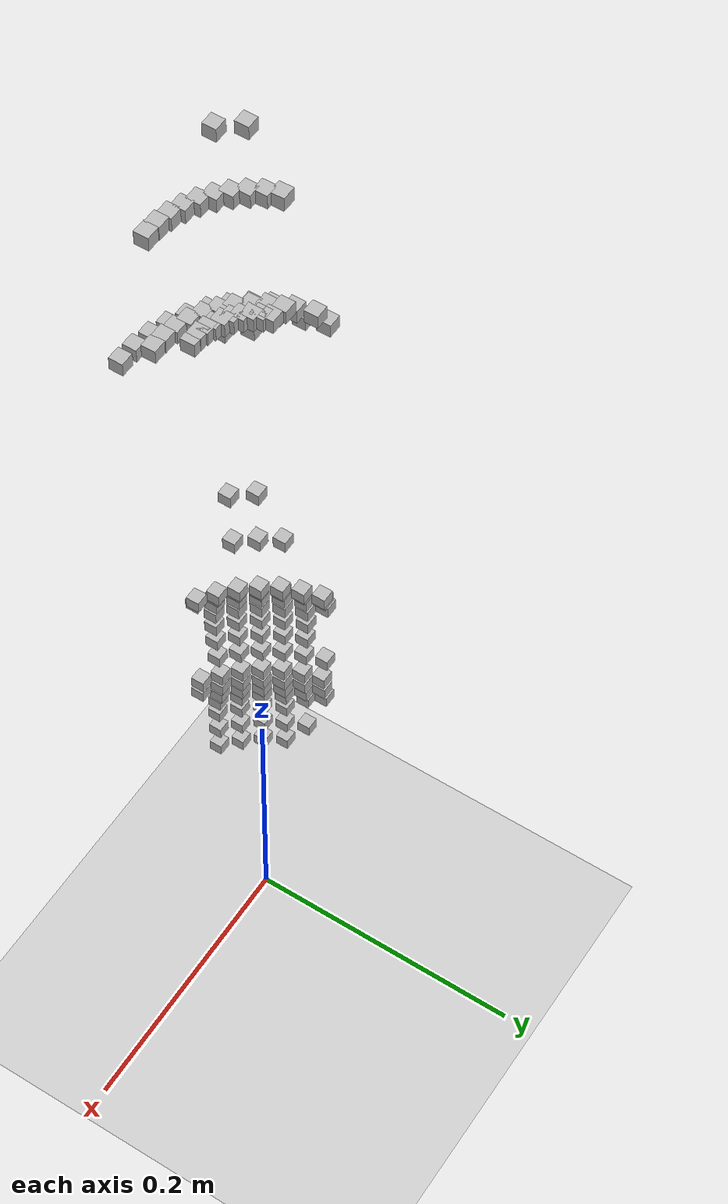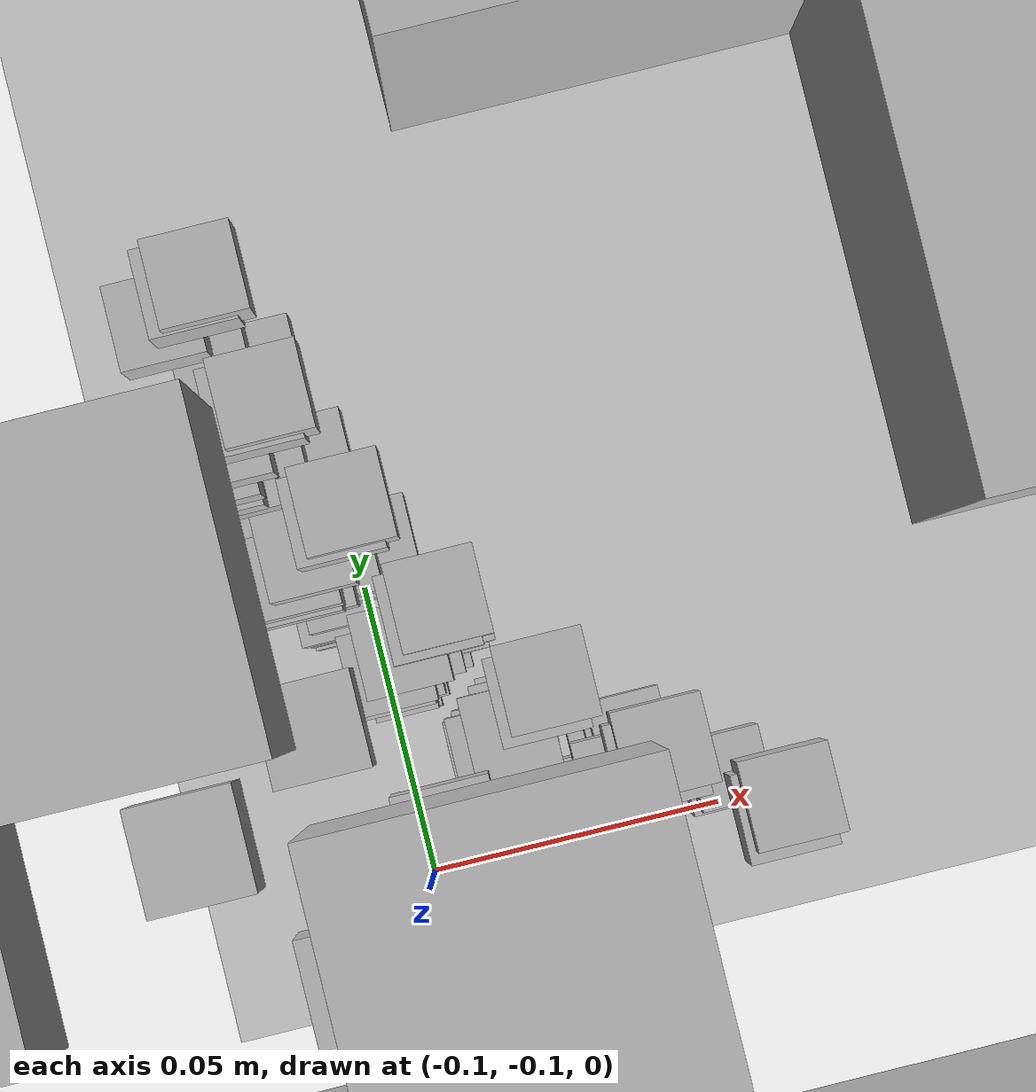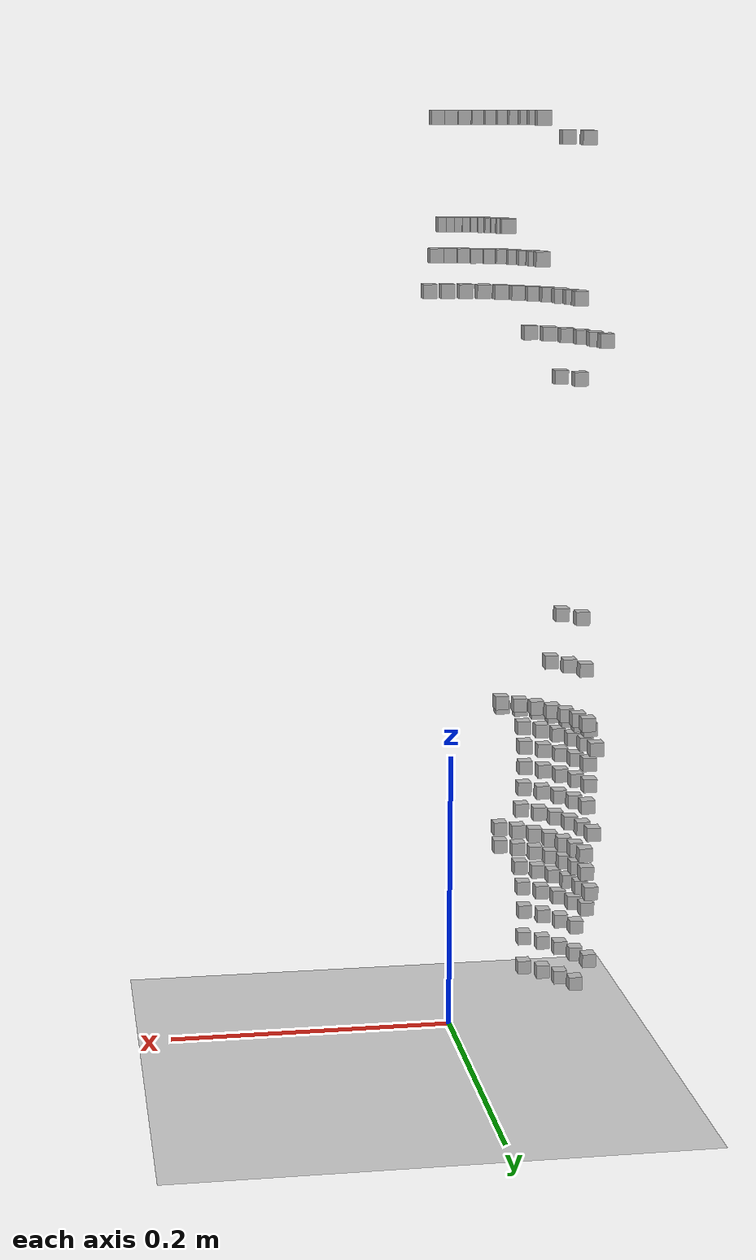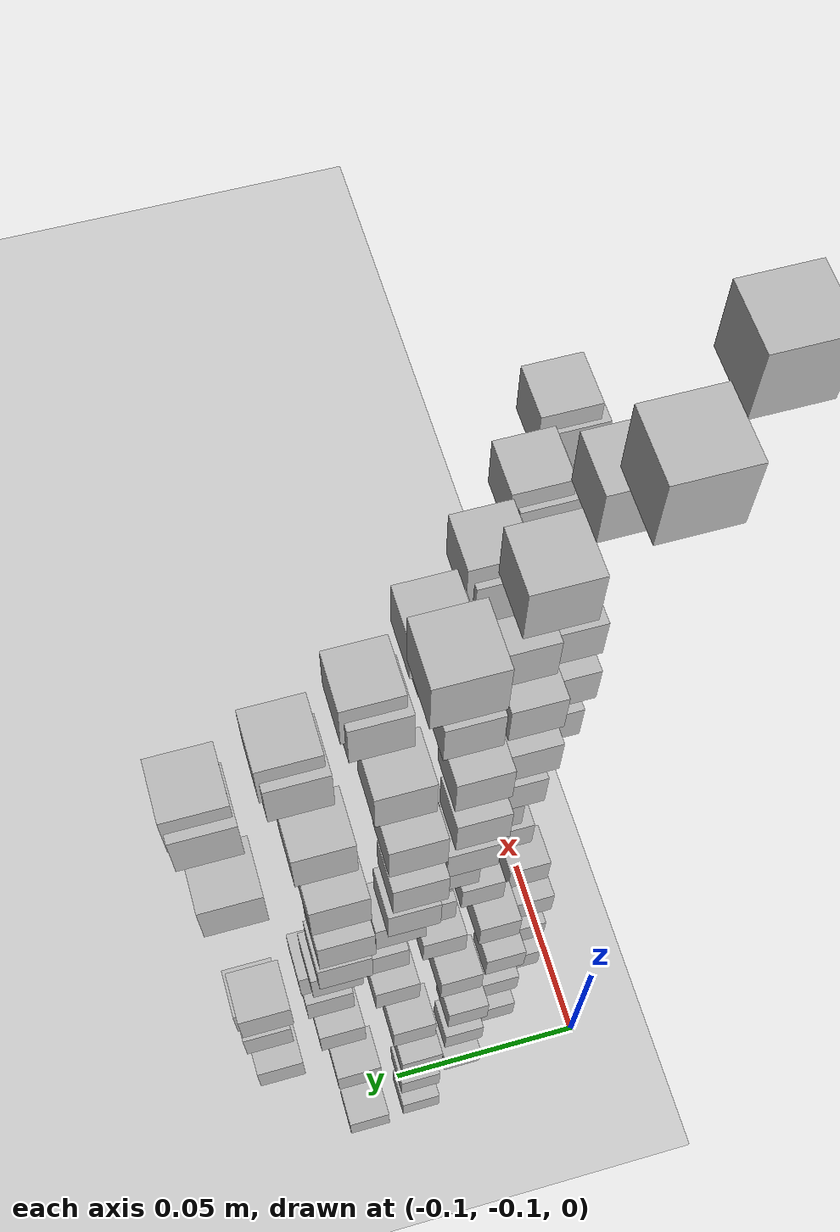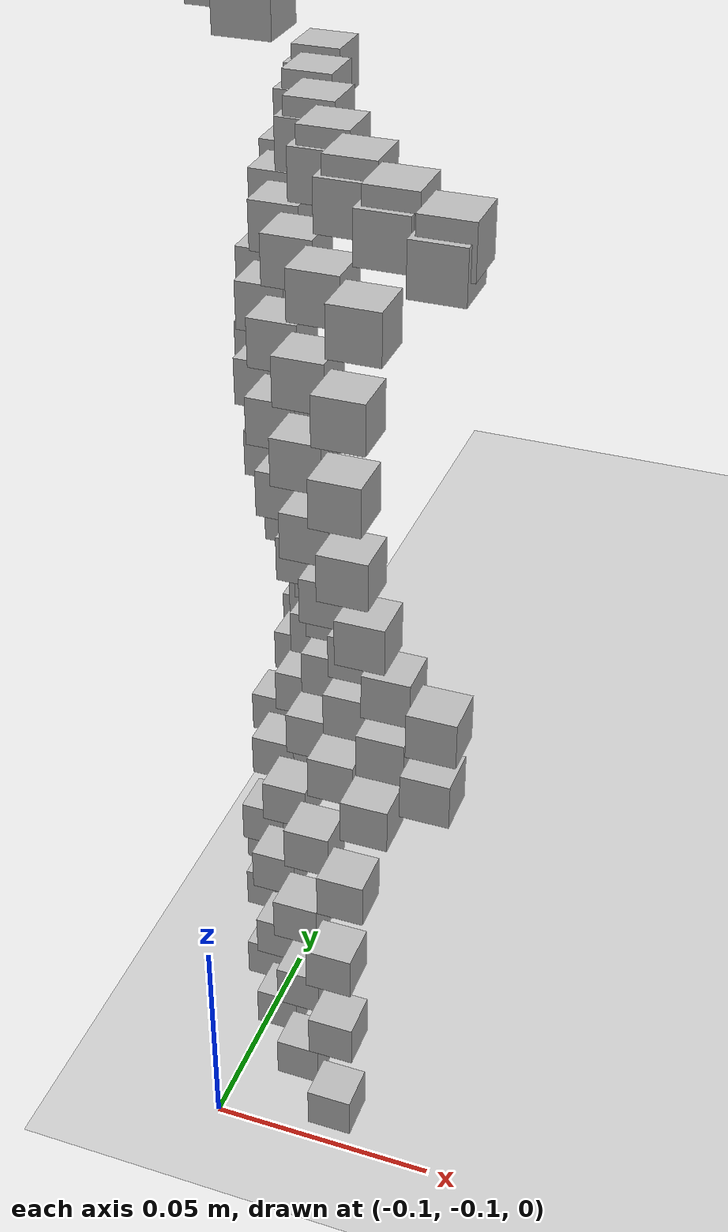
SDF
<sdf version="1.6">
 <world name="default">
  <model name="ground_plane">
   <static>1</static>
   <link name="link">
    <collision name="collision">
     <geometry><plane><normal>0 0 1</normal><size>100 100</size></plane></geometry>
     <surface>
      <contact><collide_bitmask>65535</collide_bitmask></contact>
      <friction><ode><mu>100</mu><mu2>50</mu2></ode></friction>
     </surface>
    </collision>
    <visual name="visual">
     <cast_shadows>0</cast_shadows>
     <geometry><plane><normal>0 0 1</normal><size>100 100</size></plane></geometry>
     <material>
      <script><uri>file://media/materials/scripts/gazebo.material</uri><name>Gazebo/Grey</name></script>
     </material>
    </visual>
   </link>
  </model>
  <model name="box_1685262135_6632485">
   <pose>-0.10528339830121859 -0.053644570843729394 0.005648136022940203 0.0 0.0 0.0</pose>
   <static>1</static>
   <link name="box_1685262135_6632485_link">
    <visual name="visual"><geometry><box><size>0.01 0.01 0.01</size></box></geometry></visual>
   </link>
  </model>
  <model name="box_1685262135_6632652">
   <pose>-0.09679290623230351 -0.06777512258908457 0.005648136022940203 0.0 0.0 0.0</pose>
   <static>1</static>
   <link name="box_1685262135_6632652_link">
    <visual name="visual"><geometry><box><size>0.01 0.01 0.01</size></box></geometry></visual>
   </link>
  </model>
  <model name="box_1685262135_6632814">
   <pose>-0.08641845034387564 -0.08058650866630246 0.005648136022940203 0.0 0.0 0.0</pose>
   <static>1</static>
   <link name="box_1685262135_6632814_link">
    <visual name="visual"><geometry><box><size>0.01 0.01 0.01</size></box></geometry></visual>
   </link>
  </model>
  <model name="box_1685262135_6632977">
   <pose>-0.07436195761903451 -0.09182937001812576 0.005648136022940203 0.0 0.0 0.0</pose>
   <static>1</static>
   <link name="box_1685262135_6632977_link">
    <visual name="visual"><geometry><box><size>0.01 0.01 0.01</size></box></geometry></visual>
   </link>
  </model>
  <model name="box_1685262135_6646996">
   <pose>-0.11115368447081783 -0.03827328288218928 0.02920890265866033 0.0 0.0 0.0</pose>
   <static>1</static>
   <link name="box_1685262135_6646996_link">
    <visual name="visual"><geometry><box><size>0.01 0.01 0.01</size></box></geometry></visual>
   </link>
  </model>
  <model name="box_1685262135_664718">
   <pose>-0.10474533299179058 -0.05337041287508573 0.02920890265866033 0.0 0.0 0.0</pose>
   <static>1</static>
   <link name="box_1685262135_664718_link">
    <visual name="visual"><geometry><box><size>0.01 0.01 0.01</size></box></geometry></visual>
   </link>
  </model>
  <model name="box_1685262135_6647341">
   <pose>-0.09629823275212845 -0.06742874848931356 0.02920890265866033 0.0 0.0 0.0</pose>
   <static>1</static>
   <link name="box_1685262135_6647341_link">
    <visual name="visual"><geometry><box><size>0.01 0.01 0.01</size></box></geometry></visual>
   </link>
  </model>
  <model name="box_1685262135_6647508">
   <pose>-0.08597679694956241 -0.08017466021326144 0.02920890265866033 0.0 0.0 0.0</pose>
   <static>1</static>
   <link name="box_1685262135_6647508_link">
    <visual name="visual"><geometry><box><size>0.01 0.01 0.01</size></box></geometry></visual>
   </link>
  </model>
  <model name="box_1685262135_6647675">
   <pose>-0.0739819205915301 -0.09136006337348253 0.02920890265866033 0.0 0.0 0.0</pose>
   <static>1</static>
   <link name="box_1685262135_6647675_link">
    <visual name="visual"><geometry><box><size>0.01 0.01 0.01</size></box></geometry></visual>
   </link>
  </model>
  <model name="box_1685262135_666197">
   <pose>-0.10498749792824409 -0.053493802073183994 0.05028140928145608 0.0 0.0 0.0</pose>
   <static>1</static>
   <link name="box_1685262135_666197_link">
    <visual name="visual"><geometry><box><size>0.01 0.01 0.01</size></box></geometry></visual>
   </link>
  </model>
  <model name="box_1685262135_6662147">
   <pose>-0.09652086849874288 -0.06758463971736793 0.05028140928145608 0.0 0.0 0.0</pose>
   <static>1</static>
   <link name="box_1685262135_6662147_link">
    <visual name="visual"><geometry><box><size>0.01 0.01 0.01</size></box></geometry></visual>
   </link>
  </model>
  <model name="box_1685262135_6662312">
   <pose>-0.08617557015477431 -0.08036001922584149 0.05028140928145608 0.0 0.0 0.0</pose>
   <static>1</static>
   <link name="box_1685262135_6662312_link">
    <visual name="visual"><geometry><box><size>0.01 0.01 0.01</size></box></geometry></visual>
   </link>
  </model>
  <model name="box_1685262135_666247">
   <pose>-0.07415296236100122 -0.09157128236825113 0.05028140928145608 0.0 0.0 0.0</pose>
   <static>1</static>
   <link name="box_1685262135_666247_link">
    <visual name="visual"><geometry><box><size>0.01 0.01 0.01</size></box></geometry></visual>
   </link>
  </model>
  <model name="box_1685262135_6676528">
   <pose>-0.10863872898080444 -0.037407314260783225 0.06994559093984248 0.0 0.0 0.0</pose>
   <static>1</static>
   <link name="box_1685262135_6676528_link">
    <visual name="visual"><geometry><box><size>0.01 0.01 0.01</size></box></geometry></visual>
   </link>
  </model>
  <model name="box_1685262135_667669">
   <pose>-0.1023753724140992 -0.05216285764645345 0.06994559093984248 0.0 0.0 0.0</pose>
   <static>1</static>
   <link name="box_1685262135_667669_link">
    <visual name="visual"><geometry><box><size>0.01 0.01 0.01</size></box></geometry></visual>
   </link>
  </model>
  <model name="box_1685262135_6676848">
   <pose>-0.09411939567361365 -0.06590311034240667 0.06994559093984248 0.0 0.0 0.0</pose>
   <static>1</static>
   <link name="box_1685262135_6676848_link">
    <visual name="visual"><geometry><box><size>0.01 0.01 0.01</size></box></geometry></visual>
   </link>
  </model>
  <model name="box_1685262135_6677032">
   <pose>-0.08403149195556703 -0.07836063395922183 0.06994559093984248 0.0 0.0 0.0</pose>
   <static>1</static>
   <link name="box_1685262135_6677032_link">
    <visual name="visual"><geometry><box><size>0.01 0.01 0.01</size></box></geometry></visual>
   </link>
  </model>
  <model name="box_1685262135_6677196">
   <pose>-0.07230801083101063 -0.08929295696992078 0.06994559093984248 0.0 0.0 0.0</pose>
   <static>1</static>
   <link name="box_1685262135_6677196_link">
    <visual name="visual"><geometry><box><size>0.01 0.01 0.01</size></box></geometry></visual>
   </link>
  </model>
  <model name="box_1685262135_6691816">
   <pose>-0.1072399293602162 -0.020845330620945936 0.08776207523471741 0.0 0.0 0.0</pose>
   <static>1</static>
   <link name="box_1685262135_6691816_link">
    <visual name="visual"><geometry><box><size>0.01 0.01 0.01</size></box></geometry></visual>
   </link>
  </model>
  <model name="box_1685262135_6692092">
   <pose>-0.10329516843646885 -0.03556737881208333 0.08776207523471741 0.0 0.0 0.0</pose>
   <static>1</static>
   <link name="box_1685262135_6692092_link">
    <visual name="visual"><geometry><box><size>0.01 0.01 0.01</size></box></geometry></visual>
   </link>
  </model>
  <model name="box_1685262135_6692367">
   <pose>-0.09733988455561828 -0.049597148431937216 0.08776207523471741 0.0 0.0 0.0</pose>
   <static>1</static>
   <link name="box_1685262135_6692367_link">
    <visual name="visual"><geometry><box><size>0.01 0.01 0.01</size></box></geometry></visual>
   </link>
  </model>
  <model name="box_1685262135_6692653">
   <pose>-0.08948999054437015 -0.06266156597348367 0.08776207523471741 0.0 0.0 0.0</pose>
   <static>1</static>
   <link name="box_1685262135_6692653_link">
    <visual name="visual"><geometry><box><size>0.01 0.01 0.01</size></box></geometry></visual>
   </link>
  </model>
  <model name="box_1685262135_6692927">
   <pose>-0.0798982756605314 -0.07450634740983109 0.08776207523471741 0.0 0.0 0.0</pose>
   <static>1</static>
   <link name="box_1685262135_6692927_link">
    <visual name="visual"><geometry><box><size>0.01 0.01 0.01</size></box></geometry></visual>
   </link>
  </model>
  <model name="box_1685262135_669324">
   <pose>-0.06875143172390188 -0.0849009475435602 0.08776207523471741 0.0 0.0 0.0</pose>
   <static>1</static>
   <link name="box_1685262135_669324_link">
    <visual name="visual"><geometry><box><size>0.01 0.01 0.01</size></box></geometry></visual>
   </link>
  </model>
  <model name="box_1685262135_6709254">
   <pose>-0.10367822705275627 -0.020153005825365347 0.10333120046485805 0.0 0.0 0.0</pose>
   <static>1</static>
   <link name="box_1685262135_6709254_link">
    <visual name="visual"><geometry><box><size>0.01 0.01 0.01</size></box></geometry></visual>
   </link>
  </model>
  <model name="box_1685262135_6709504">
   <pose>-0.09986448135970062 -0.03438609851899602 0.10333120046485805 0.0 0.0 0.0</pose>
   <static>1</static>
   <link name="box_1685262135_6709504_link">
    <visual name="visual"><geometry><box><size>0.01 0.01 0.01</size></box></geometry></visual>
   </link>
  </model>
  <model name="box_1685262135_6709769">
   <pose>-0.0941069871311423 -0.047949904918561714 0.10333120046485805 0.0 0.0 0.0</pose>
   <static>1</static>
   <link name="box_1685262135_6709769_link">
    <visual name="visual"><geometry><box><size>0.01 0.01 0.01</size></box></geometry></visual>
   </link>
  </model>
  <model name="box_1685262135_670997">
   <pose>-0.08651780744318754 -0.0605804209610961 0.10333120046485805 0.0 0.0 0.0</pose>
   <static>1</static>
   <link name="box_1685262135_670997_link">
    <visual name="visual"><geometry><box><size>0.01 0.01 0.01</size></box></geometry></visual>
   </link>
  </model>
  <model name="box_1685262135_6710138">
   <pose>-0.07724465704589852 -0.0720318080188302 0.10333120046485805 0.0 0.0 0.0</pose>
   <static>1</static>
   <link name="box_1685262135_6710138_link">
    <visual name="visual"><geometry><box><size>0.01 0.01 0.01</size></box></geometry></visual>
   </link>
  </model>
  <model name="box_1685262135_6710308">
   <pose>-0.06646802726370614 -0.08208117786844502 0.10333120046485805 0.0 0.0 0.0</pose>
   <static>1</static>
   <link name="box_1685262135_6710308_link">
    <visual name="visual"><geometry><box><size>0.01 0.01 0.01</size></box></geometry></visual>
   </link>
  </model>
  <model name="box_1685262135_6710505">
   <pose>-0.05439767293708616 -0.09053293095680652 0.10333120046485805 0.0 0.0 0.0</pose>
   <static>1</static>
   <link name="box_1685262135_6710505_link">
    <visual name="visual"><geometry><box><size>0.01 0.01 0.01</size></box></geometry></visual>
   </link>
  </model>
  <model name="box_1685262135_6717644">
   <pose>-0.10833463037932047 -0.07585672484076288 0.6254485040649695 0.0 0.0 0.0</pose>
   <static>1</static>
   <link name="box_1685262135_6717644_link">
    <visual name="visual"><geometry><box><size>0.01 0.01 0.01</size></box></geometry></visual>
   </link>
  </model>
  <model name="box_1685262135_6717813">
   <pose>-0.09672310957879816 -0.09019575886037548 0.6254485040649695 0.0 0.0 0.0</pose>
   <static>1</static>
   <link name="box_1685262135_6717813_link">
    <visual name="visual"><geometry><box><size>0.01 0.01 0.01</size></box></geometry></visual>
   </link>
  </model>
  <model name="box_1685262135_6724665">
   <pose>-0.1024956799873656 -0.019923141961224806 0.1175214826546544 0.0 0.0 0.0</pose>
   <static>1</static>
   <link name="box_1685262135_6724665_link">
    <visual name="visual"><geometry><box><size>0.01 0.01 0.01</size></box></geometry></visual>
   </link>
  </model>
  <model name="box_1685262135_6724834">
   <pose>-0.09872543362783129 -0.03399389293205844 0.1175214826546544 0.0 0.0 0.0</pose>
   <static>1</static>
   <link name="box_1685262135_6724834_link">
    <visual name="visual"><geometry><box><size>0.01 0.01 0.01</size></box></geometry></visual>
   </link>
  </model>
  <model name="box_1685262135_6724997">
   <pose>-0.09303360900124755 -0.04740299144444961 0.1175214826546544 0.0 0.0 0.0</pose>
   <static>1</static>
   <link name="box_1685262135_6724997_link">
    <visual name="visual"><geometry><box><size>0.01 0.01 0.01</size></box></geometry></visual>
   </link>
  </model>
  <model name="box_1685262135_6725163">
   <pose>-0.08553099099961627 -0.059889444648478195 0.1175214826546544 0.0 0.0 0.0</pose>
   <static>1</static>
   <link name="box_1685262135_6725163_link">
    <visual name="visual"><geometry><box><size>0.01 0.01 0.01</size></box></geometry></visual>
   </link>
  </model>
  <model name="box_1685262135_672533">
   <pose>-0.07636360954823775 -0.0712102179356577 0.1175214826546544 0.0 0.0 0.0</pose>
   <static>1</static>
   <link name="box_1685262135_672533_link">
    <visual name="visual"><geometry><box><size>0.01 0.01 0.01</size></box></geometry></visual>
   </link>
  </model>
  <model name="box_1685262135_672549">
   <pose>-0.06570989729932117 -0.081144965331142 0.1175214826546544 0.0 0.0 0.0</pose>
   <static>1</static>
   <link name="box_1685262135_672549_link">
    <visual name="visual"><geometry><box><size>0.01 0.01 0.01</size></box></geometry></visual>
   </link>
  </model>
  <model name="box_1685262135_672565">
   <pose>-0.05377721664337369 -0.08950031827748561 0.1175214826546544 0.0 0.0 0.0</pose>
   <static>1</static>
   <link name="box_1685262135_672565_link">
    <visual name="visual"><geometry><box><size>0.01 0.01 0.01</size></box></geometry></visual>
   </link>
  </model>
  <model name="box_1685262135_6732576">
   <pose>-0.06328072726428605 -0.02178930178614589 0.6394057500981778 0.0 0.0 0.0</pose>
   <static>1</static>
   <link name="box_1685262135_6732576_link">
    <visual name="visual"><geometry><box><size>0.01 0.01 0.01</size></box></geometry></visual>
   </link>
  </model>
  <model name="box_1685262135_6732738">
   <pose>-0.05963239887923397 -0.03038422484337277 0.6394057500981778 0.0 0.0 0.0</pose>
   <static>1</static>
   <link name="box_1685262135_6732738_link">
    <visual name="visual"><geometry><box><size>0.01 0.01 0.01</size></box></geometry></visual>
   </link>
  </model>
  <model name="box_1685262135_673291">
   <pose>-0.05482339368084595 -0.038387753525566934 0.6394057500981778 0.0 0.0 0.0</pose>
   <static>1</static>
   <link name="box_1685262135_673291_link">
    <visual name="visual"><geometry><box><size>0.01 0.01 0.01</size></box></geometry></visual>
   </link>
  </model>
  <model name="box_1685262135_673308">
   <pose>-0.04894731348514631 -0.04564410825080835 0.6394057500981778 0.0 0.0 0.0</pose>
   <static>1</static>
   <link name="box_1685262135_673308_link">
    <visual name="visual"><geometry><box><size>0.01 0.01 0.01</size></box></geometry></visual>
   </link>
  </model>
  <model name="box_1685262135_6733246">
   <pose>-0.04211852950920214 -0.0520120523283514 0.6394057500981778 0.0 0.0 0.0</pose>
   <static>1</static>
   <link name="box_1685262135_6733246_link">
    <visual name="visual"><geometry><box><size>0.01 0.01 0.01</size></box></geometry></visual>
   </link>
  </model>
  <model name="box_1685262135_6733415">
   <pose>-0.0344699562654786 -0.05736764097015572 0.6394057500981778 0.0 0.0 0.0</pose>
   <static>1</static>
   <link name="box_1685262135_6733415_link">
    <visual name="visual"><geometry><box><size>0.01 0.01 0.01</size></box></geometry></visual>
   </link>
  </model>
  <model name="box_1685262135_6733644">
   <pose>-0.026150464532041607 -0.06160663373520038 0.6394057500981778 0.0 0.0 0.0</pose>
   <static>1</static>
   <link name="box_1685262135_6733644_link">
    <visual name="visual"><geometry><box><size>0.01 0.01 0.01</size></box></geometry></visual>
   </link>
  </model>
  <model name="box_1685262135_6733956">
   <pose>-0.017321983752200974 -0.06464652345109659 0.6394057500981778 0.0 0.0 0.0</pose>
   <static>1</static>
   <link name="box_1685262135_6733956_link">
    <visual name="visual"><geometry><box><size>0.01 0.01 0.01</size></box></geometry></visual>
   </link>
  </model>
  <model name="box_1685262135_6734185">
   <pose>-0.0081563502620882 -0.06642814212234774 0.6394057500981778 0.0 0.0 0.0</pose>
   <static>1</static>
   <link name="box_1685262135_6734185_link">
    <visual name="visual"><geometry><box><size>0.01 0.01 0.01</size></box></geometry></visual>
   </link>
  </model>
  <model name="box_1685262135_6734366">
   <pose>0.0011680373081651783 -0.06691681256807912 0.6394057500981778 0.0 0.0 0.0</pose>
   <static>1</static>
   <link name="box_1685262135_6734366_link">
    <visual name="visual"><geometry><box><size>0.01 0.01 0.01</size></box></geometry></visual>
   </link>
  </model>
  <model name="box_1685262135_674033">
   <pose>-0.10819794282352709 -0.0210315495741024 0.13255102465284446 0.0 0.0 0.0</pose>
   <static>1</static>
   <link name="box_1685262135_674033_link">
    <visual name="visual"><geometry><box><size>0.01 0.01 0.01</size></box></geometry></visual>
   </link>
  </model>
  <model name="box_1685262135_67405">
   <pose>-0.10421794190944184 -0.03588511519963913 0.13255102465284446 0.0 0.0 0.0</pose>
   <static>1</static>
   <link name="box_1685262135_67405_link">
    <visual name="visual"><geometry><box><size>0.01 0.01 0.01</size></box></geometry></visual>
   </link>
  </model>
  <model name="box_1685262135_6740665">
   <pose>-0.09820945730224118 -0.05004021787652836 0.13255102465284446 0.0 0.0 0.0</pose>
   <static>1</static>
   <link name="box_1685262135_6740665_link">
    <visual name="visual"><geometry><box><size>0.01 0.01 0.01</size></box></geometry></visual>
   </link>
  </model>
  <model name="box_1685262135_674083">
   <pose>-0.09028943732025431 -0.06322134463235522 0.13255102465284446 0.0 0.0 0.0</pose>
   <static>1</static>
   <link name="box_1685262135_674083_link">
    <visual name="visual"><geometry><box><size>0.01 0.01 0.01</size></box></geometry></visual>
   </link>
  </model>
  <model name="box_1685262135_6740994">
   <pose>-0.08061203614354147 -0.07517193982812688 0.13255102465284446 0.0 0.0 0.0</pose>
   <static>1</static>
   <link name="box_1685262135_6740994_link">
    <visual name="visual"><geometry><box><size>0.01 0.01 0.01</size></box></geometry></visual>
   </link>
  </model>
  <model name="box_1685262135_6741164">
   <pose>-0.06936561337812659 -0.08565939872195828 0.13255102465284446 0.0 0.0 0.0</pose>
   <static>1</static>
   <link name="box_1685262135_6741164_link">
    <visual name="visual"><geometry><box><size>0.01 0.01 0.01</size></box></geometry></visual>
   </link>
  </model>
  <model name="box_1685262135_675604">
   <pose>-0.10765827373626079 -0.03706971644649217 0.14825398363050718 0.0 0.0 0.0</pose>
   <static>1</static>
   <link name="box_1685262135_675604_link">
    <visual name="visual"><geometry><box><size>0.01 0.01 0.01</size></box></geometry></visual>
   </link>
  </model>
  <model name="box_1685262135_675621">
   <pose>-0.10145144342728965 -0.05169209231414838 0.14825398363050718 0.0 0.0 0.0</pose>
   <static>1</static>
   <link name="box_1685262135_675621_link">
    <visual name="visual"><geometry><box><size>0.01 0.01 0.01</size></box></geometry></visual>
   </link>
  </model>
  <model name="box_1685262135_6756403">
   <pose>-0.09326997617131279 -0.06530834040379327 0.14825398363050718 0.0 0.0 0.0</pose>
   <static>1</static>
   <link name="box_1685262135_6756403_link">
    <visual name="visual"><geometry><box><size>0.01 0.01 0.01</size></box></geometry></visual>
   </link>
  </model>
  <model name="box_1685262135_6756585">
   <pose>-0.08327311492218678 -0.07765343593461442 0.14825398363050718 0.0 0.0 0.0</pose>
   <static>1</static>
   <link name="box_1685262135_6756585_link">
    <visual name="visual"><geometry><box><size>0.01 0.01 0.01</size></box></geometry></visual>
   </link>
  </model>
  <model name="box_1685262135_6756752">
   <pose>-0.07165543721286466 -0.08848709566444252 0.14825398363050718 0.0 0.0 0.0</pose>
   <static>1</static>
   <link name="box_1685262135_6756752_link">
    <visual name="visual"><geometry><box><size>0.01 0.01 0.01</size></box></geometry></visual>
   </link>
  </model>
  <model name="box_1685262135_676358">
   <pose>-0.10897727288289147 -0.03752388427458262 0.16428489958480497 0.0 0.0 0.0</pose>
   <static>1</static>
   <link name="box_1685262135_676358_link">
    <visual name="visual"><geometry><box><size>0.01 0.01 0.01</size></box></geometry></visual>
   </link>
  </model>
  <model name="box_1685262135_6763775">
   <pose>-0.10269439821990374 -0.05232540941355634 0.16428489958480497 0.0 0.0 0.0</pose>
   <static>1</static>
   <link name="box_1685262135_6763775_link">
    <visual name="visual"><geometry><box><size>0.01 0.01 0.01</size></box></geometry></visual>
   </link>
  </model>
  <model name="box_1685262135_676403">
   <pose>-0.0944126939087122 -0.06610847997756628 0.16428489958480497 0.0 0.0 0.0</pose>
   <static>1</static>
   <link name="box_1685262135_676403_link">
    <visual name="visual"><geometry><box><size>0.01 0.01 0.01</size></box></geometry></visual>
   </link>
  </model>
  <model name="box_1685262135_676433">
   <pose>-0.08429335390343518 -0.07860482417609427 0.16428489958480497 0.0 0.0 0.0</pose>
   <static>1</static>
   <link name="box_1685262135_676433_link">
    <visual name="visual"><geometry><box><size>0.01 0.01 0.01</size></box></geometry></visual>
   </link>
  </model>
  <model name="box_1685262135_6764603">
   <pose>-0.07253333964669667 -0.08957121488369688 0.16428489958480497 0.0 0.0 0.0</pose>
   <static>1</static>
   <link name="box_1685262135_6764603_link">
    <visual name="visual"><geometry><box><size>0.01 0.01 0.01</size></box></geometry></visual>
   </link>
  </model>
  <model name="box_1685262135_6772065">
   <pose>-0.10818466991892269 -0.03725096918771294 0.18035913689155542 0.0 0.0 0.0</pose>
   <static>1</static>
   <link name="box_1685262135_6772065_link">
    <visual name="visual"><geometry><box><size>0.01 0.01 0.01</size></box></geometry></visual>
   </link>
  </model>
  <model name="box_1685262135_6772242">
   <pose>-0.10194749125243398 -0.05194484130522578 0.18035913689155542 0.0 0.0 0.0</pose>
   <static>1</static>
   <link name="box_1685262135_6772242_link">
    <visual name="visual"><geometry><box><size>0.01 0.01 0.01</size></box></geometry></visual>
   </link>
  </model>
  <model name="box_1685262135_6772408">
   <pose>-0.09372602063226915 -0.06562766617311369 0.18035913689155542 0.0 0.0 0.0</pose>
   <static>1</static>
   <link name="box_1685262135_6772408_link">
    <visual name="visual"><geometry><box><size>0.01 0.01 0.01</size></box></geometry></visual>
   </link>
  </model>
  <model name="box_1685262135_6772573">
   <pose>-0.08368027963226554 -0.07803312316930573 0.18035913689155542 0.0 0.0 0.0</pose>
   <static>1</static>
   <link name="box_1685262135_6772573_link">
    <visual name="visual"><geometry><box><size>0.01 0.01 0.01</size></box></geometry></visual>
   </link>
  </model>
  <model name="box_1685262135_6772738">
   <pose>-0.07200579717412714 -0.08891975418436927 0.18035913689155542 0.0 0.0 0.0</pose>
   <static>1</static>
   <link name="box_1685262135_6772738_link">
    <visual name="visual"><geometry><box><size>0.01 0.01 0.01</size></box></geometry></visual>
   </link>
  </model>
  <model name="box_1685262135_6779413">
   <pose>-0.10930268189284421 -0.02124628909591278 0.19617448160834577 0.0 0.0 0.0</pose>
   <static>1</static>
   <link name="box_1685262135_6779413_link">
    <visual name="visual"><geometry><box><size>0.01 0.01 0.01</size></box></geometry></visual>
   </link>
  </model>
  <model name="box_1685262135_6779575">
   <pose>-0.10528204376892883 -0.03625151485321338 0.19617448160834577 0.0 0.0 0.0</pose>
   <static>1</static>
   <link name="box_1685262135_6779575_link">
    <visual name="visual"><geometry><box><size>0.01 0.01 0.01</size></box></geometry></visual>
   </link>
  </model>
  <model name="box_1685262135_6779764">
   <pose>-0.09921221041960106 -0.0505511461093831 0.19617448160834577 0.0 0.0 0.0</pose>
   <static>1</static>
   <link name="box_1685262135_6779764_link">
    <visual name="visual"><geometry><box><size>0.01 0.01 0.01</size></box></geometry></visual>
   </link>
  </model>
  <model name="box_1685262135_6779935">
   <pose>-0.09121132424667243 -0.06386685680761017 0.19617448160834577 0.0 0.0 0.0</pose>
   <static>1</static>
   <link name="box_1685262135_6779935_link">
    <visual name="visual"><geometry><box><size>0.01 0.01 0.01</size></box></geometry></visual>
   </link>
  </model>
  <model name="box_1685262135_6780107">
   <pose>-0.08143511339862593 -0.07593947178554993 0.19617448160834577 0.0 0.0 0.0</pose>
   <static>1</static>
   <link name="box_1685262135_6780107_link">
    <visual name="visual"><geometry><box><size>0.01 0.01 0.01</size></box></geometry></visual>
   </link>
  </model>
  <model name="box_1685262135_678027">
   <pose>-0.07007386069934368 -0.08653401132505284 0.19617448160834577 0.0 0.0 0.0</pose>
   <static>1</static>
   <link name="box_1685262135_678027_link">
    <visual name="visual"><geometry><box><size>0.01 0.01 0.01</size></box></geometry></visual>
   </link>
  </model>
  <model name="box_1685262135_6786785">
   <pose>-0.10414374175537283 -0.020243492717168108 0.2113835132273968 0.0 0.0 0.0</pose>
   <static>1</static>
   <link name="box_1685262135_6786785_link">
    <visual name="visual"><geometry><box><size>0.01 0.01 0.01</size></box></geometry></visual>
   </link>
  </model>
  <model name="box_1685262135_678695">
   <pose>-0.1003128723639031 -0.034540491923293615 0.2113835132273968 0.0 0.0 0.0</pose>
   <static>1</static>
   <link name="box_1685262135_678695_link">
    <visual name="visual"><geometry><box><size>0.01 0.01 0.01</size></box></geometry></visual>
   </link>
  </model>
  <model name="box_1685262135_678713">
   <pose>-0.0945295270160711 -0.04816519974335939 0.2113835132273968 0.0 0.0 0.0</pose>
   <static>1</static>
   <link name="box_1685262135_678713_link">
    <visual name="visual"><geometry><box><size>0.01 0.01 0.01</size></box></geometry></visual>
   </link>
  </model>
  <model name="box_1685262135_6787295">
   <pose>-0.08690627195061454 -0.060852426737523405 0.2113835132273968 0.0 0.0 0.0</pose>
   <static>1</static>
   <link name="box_1685262135_6787295_link">
    <visual name="visual"><geometry><box><size>0.01 0.01 0.01</size></box></geometry></visual>
   </link>
  </model>
  <model name="box_1685262135_6787455">
   <pose>-0.07759148515605845 -0.07235523046385096 0.2113835132273968 0.0 0.0 0.0</pose>
   <static>1</static>
   <link name="box_1685262135_6787455_link">
    <visual name="visual"><geometry><box><size>0.01 0.01 0.01</size></box></geometry></visual>
   </link>
  </model>
  <model name="box_1685262135_6787617">
   <pose>-0.06676646836194587 -0.08244972193205446 0.2113835132273968 0.0 0.0 0.0</pose>
   <static>1</static>
   <link name="box_1685262135_6787617_link">
    <visual name="visual"><geometry><box><size>0.01 0.01 0.01</size></box></geometry></visual>
   </link>
  </model>
  <model name="box_1685262135_6787777">
   <pose>-0.05464191820690019 -0.09093942334801917 0.2113835132273968 0.0 0.0 0.0</pose>
   <static>1</static>
   <link name="box_1685262135_6787777_link">
    <visual name="visual"><geometry><box><size>0.01 0.01 0.01</size></box></geometry></visual>
   </link>
  </model>
  <model name="box_1685262135_6794238">
   <pose>-0.10253612457348699 -0.01993100359237803 0.21508165296930842 0.0 0.0 0.0</pose>
   <static>1</static>
   <link name="box_1685262135_6794238_link">
    <visual name="visual"><geometry><box><size>0.01 0.01 0.01</size></box></geometry></visual>
   </link>
  </model>
  <model name="box_1685262135_6794398">
   <pose>-0.09876439048243457 -0.03400730685282526 0.21508165296930842 0.0 0.0 0.0</pose>
   <static>1</static>
   <link name="box_1685262135_6794398_link">
    <visual name="visual"><geometry><box><size>0.01 0.01 0.01</size></box></geometry></visual>
   </link>
  </model>
  <model name="box_1685262135_6794584">
   <pose>-0.09307031987347064 -0.047421696568120404 0.21508165296930842 0.0 0.0 0.0</pose>
   <static>1</static>
   <link name="box_1685262135_6794584_link">
    <visual name="visual"><geometry><box><size>0.01 0.01 0.01</size></box></geometry></visual>
   </link>
  </model>
  <model name="box_1685262135_6794748">
   <pose>-0.08556474135408933 -0.059913076901097484 0.21508165296930842 0.0 0.0 0.0</pose>
   <static>1</static>
   <link name="box_1685262135_6794748_link">
    <visual name="visual"><geometry><box><size>0.01 0.01 0.01</size></box></geometry></visual>
   </link>
  </model>
  <model name="box_1685262135_679491">
   <pose>-0.07639374247270143 -0.07123831734230954 0.21508165296930842 0.0 0.0 0.0</pose>
   <static>1</static>
   <link name="box_1685262135_679491_link">
    <visual name="visual"><geometry><box><size>0.01 0.01 0.01</size></box></geometry></visual>
   </link>
  </model>
  <model name="box_1685262135_6795135">
   <pose>-0.0657358262906765 -0.0811769849688385 0.21508165296930842 0.0 0.0 0.0</pose>
   <static>1</static>
   <link name="box_1685262135_6795135_link">
    <visual name="visual"><geometry><box><size>0.01 0.01 0.01</size></box></geometry></visual>
   </link>
  </model>
  <model name="box_1685262135_6795325">
   <pose>-0.0537984370232977 -0.08953563492040083 0.21508165296930842 0.0 0.0 0.0</pose>
   <static>1</static>
   <link name="box_1685262135_6795325_link">
    <visual name="visual"><geometry><box><size>0.01 0.01 0.01</size></box></geometry></visual>
   </link>
  </model>
  <model name="box_1685262135_6801968">
   <pose>-0.10893595572164838 -0.05550564180517809 0.24636117300793503 0.0 0.0 0.0</pose>
   <static>1</static>
   <link name="box_1685262135_6801968_link">
    <visual name="visual"><geometry><box><size>0.01 0.01 0.01</size></box></geometry></visual>
   </link>
  </model>
  <model name="box_1685262135_6802151">
   <pose>-0.10015090619818866 -0.0701264194785053 0.24636117300793503 0.0 0.0 0.0</pose>
   <static>1</static>
   <link name="box_1685262135_6802151_link">
    <visual name="visual"><geometry><box><size>0.01 0.01 0.01</size></box></geometry></visual>
   </link>
  </model>
  <model name="box_1685262135_680232">
   <pose>-0.08941653320554856 -0.0833822661643032 0.24636117300793503 0.0 0.0 0.0</pose>
   <static>1</static>
   <link name="box_1685262135_680232_link">
    <visual name="visual"><geometry><box><size>0.01 0.01 0.01</size></box></geometry></visual>
   </link>
  </model>
  <model name="box_1685262135_6809487">
   <pose>-0.11106033790763874 -0.07776528579904629 0.2798396861917631 0.0 0.0 0.0</pose>
   <static>1</static>
   <link name="box_1685262135_6809487_link">
    <visual name="visual"><geometry><box><size>0.01 0.01 0.01</size></box></geometry></visual>
   </link>
  </model>
  <model name="box_1685262135_680966">
   <pose>-0.09915667036188464 -0.09246509100363659 0.2798396861917631 0.0 0.0 0.0</pose>
   <static>1</static>
   <link name="box_1685262135_680966_link">
    <visual name="visual"><geometry><box><size>0.01 0.01 0.01</size></box></geometry></visual>
   </link>
  </model>
  <model name="box_1685262135_6847475">
   <pose>-0.10512398069669708 -0.07360860373043937 0.45627229759588134 0.0 0.0 0.0</pose>
   <static>1</static>
   <link name="box_1685262135_6847475_link">
    <visual name="visual"><geometry><box><size>0.01 0.01 0.01</size></box></geometry></visual>
   </link>
  </model>
  <model name="box_1685262135_6847634">
   <pose>-0.09385658370443847 -0.0875226802377311 0.45627229759588134 0.0 0.0 0.0</pose>
   <static>1</static>
   <link name="box_1685262135_6847634_link">
    <visual name="visual"><geometry><box><size>0.01 0.01 0.01</size></box></geometry></visual>
   </link>
  </model>
  <model name="box_1685262135_6854339">
   <pose>-0.11024287478476376 -0.021429044080893186 0.4885508417419748 0.0 0.0 0.0</pose>
   <static>1</static>
   <link name="box_1685262135_6854339_link">
    <visual name="visual"><geometry><box><size>0.01 0.01 0.01</size></box></geometry></visual>
   </link>
  </model>
  <model name="box_1685262135_68545">
   <pose>-0.10618765219027892 -0.036563340839511876 0.4885508417419748 0.0 0.0 0.0</pose>
   <static>1</static>
   <link name="box_1685262135_68545_link">
    <visual name="visual"><geometry><box><size>0.01 0.01 0.01</size></box></geometry></visual>
   </link>
  </model>
  <model name="box_1685262135_6854658">
   <pose>-0.10006560773257442 -0.05098597375887318 0.4885508417419748 0.0 0.0 0.0</pose>
   <static>1</static>
   <link name="box_1685262135_6854658_link">
    <visual name="visual"><geometry><box><size>0.01 0.01 0.01</size></box></geometry></visual>
   </link>
  </model>
  <model name="box_1685262135_685482">
   <pose>-0.0919959000432971 -0.06441622269470364 0.4885508417419748 0.0 0.0 0.0</pose>
   <static>1</static>
   <link name="box_1685262135_685482_link">
    <visual name="visual"><geometry><box><size>0.01 0.01 0.01</size></box></geometry></visual>
   </link>
  </model>
  <model name="box_1685262135_6854985">
   <pose>-0.08213559680346234 -0.07659268312814894 0.4885508417419748 0.0 0.0 0.0</pose>
   <static>1</static>
   <link name="box_1685262135_6854985_link">
    <visual name="visual"><geometry><box><size>0.01 0.01 0.01</size></box></geometry></visual>
   </link>
  </model>
  <model name="box_1685262135_6855145">
   <pose>-0.07067661759970476 -0.08727835410739061 0.4885508417419748 0.0 0.0 0.0</pose>
   <static>1</static>
   <link name="box_1685262135_6855145_link">
    <visual name="visual"><geometry><box><size>0.01 0.01 0.01</size></box></geometry></visual>
   </link>
  </model>
  <model name="box_1685262135_6862147">
   <pose>-0.09029717641045164 -0.017551993064926705 0.5182674726656538 0.0 0.0 0.0</pose>
   <static>1</static>
   <link name="box_1685262135_6862147_link">
    <visual name="visual"><geometry><box><size>0.01 0.01 0.01</size></box></geometry></visual>
   </link>
  </model>
  <model name="box_1685262135_6862311">
   <pose>-0.0869756451939194 -0.029948116323951047 0.5182674726656538 0.0 0.0 0.0</pose>
   <static>1</static>
   <link name="box_1685262135_6862311_link">
    <visual name="visual"><geometry><box><size>0.01 0.01 0.01</size></box></geometry></visual>
   </link>
  </model>
  <model name="box_1685262135_6862473">
   <pose>-0.08196123197701759 -0.04176133356420705 0.5182674726656538 0.0 0.0 0.0</pose>
   <static>1</static>
   <link name="box_1685262135_6862473_link">
    <visual name="visual"><geometry><box><size>0.01 0.01 0.01</size></box></geometry></visual>
   </link>
  </model>
  <model name="box_1685262135_6862643">
   <pose>-0.07535153660920267 -0.05276171394944867 0.5182674726656538 0.0 0.0 0.0</pose>
   <static>1</static>
   <link name="box_1685262135_6862643_link">
    <visual name="visual"><geometry><box><size>0.01 0.01 0.01</size></box></geometry></visual>
   </link>
  </model>
  <model name="box_1685262135_6862895">
   <pose>-0.06727520929239217 -0.06273514758822432 0.5182674726656538 0.0 0.0 0.0</pose>
   <static>1</static>
   <link name="box_1685262135_6862895_link">
    <visual name="visual"><geometry><box><size>0.01 0.01 0.01</size></box></geometry></visual>
   </link>
  </model>
  <model name="box_1685262135_6863153">
   <pose>-0.05788944655112158 -0.0714875129393679 0.5182674726656538 0.0 0.0 0.0</pose>
   <static>1</static>
   <link name="box_1685262135_6863153_link">
    <visual name="visual"><geometry><box><size>0.01 0.01 0.01</size></box></geometry></visual>
   </link>
  </model>
  <model name="box_1685262135_6863377">
   <pose>-0.047376931581002917 -0.07884845516698744 0.5182674726656538 0.0 0.0 0.0</pose>
   <static>1</static>
   <link name="box_1685262135_6863377_link">
    <visual name="visual"><geometry><box><size>0.01 0.01 0.01</size></box></geometry></visual>
   </link>
  </model>
  <model name="box_1685262135_686363">
   <pose>-0.035942278528120916 -0.08467470190356996 0.5182674726656538 0.0 0.0 0.0</pose>
   <static>1</static>
   <link name="box_1685262135_686363_link">
    <visual name="visual"><geometry><box><size>0.01 0.01 0.01</size></box></geometry></visual>
   </link>
  </model>
  <model name="box_1685262135_6863873">
   <pose>-0.023808049907424942 -0.08885285188364536 0.5182674726656538 0.0 0.0 0.0</pose>
   <static>1</static>
   <link name="box_1685262135_6863873_link">
    <visual name="visual"><geometry><box><size>0.01 0.01 0.01</size></box></geometry></visual>
   </link>
  </model>
  <model name="box_1685262135_6864054">
   <pose>-0.011210424676536284 -0.09130158217042662 0.5182674726656538 0.0 0.0 0.0</pose>
   <static>1</static>
   <link name="box_1685262135_6864054_link">
    <visual name="visual"><geometry><box><size>0.01 0.01 0.01</size></box></geometry></visual>
   </link>
  </model>
  <model name="box_1685262135_6864223">
   <pose>0.0016053987190120422 -0.09197323101427095 0.5182674726656538 0.0 0.0 0.0</pose>
   <static>1</static>
   <link name="box_1685262135_6864223_link">
    <visual name="visual"><geometry><box><size>0.01 0.01 0.01</size></box></geometry></visual>
   </link>
  </model>
  <model name="box_1685262135_6870484">
   <pose>-0.06401623444811709 -0.022042557219311833 0.5448600440676412 0.0 0.0 0.0</pose>
   <static>1</static>
   <link name="box_1685262135_6870484_link">
    <visual name="visual"><geometry><box><size>0.01 0.01 0.01</size></box></geometry></visual>
   </link>
  </model>
  <model name="box_1685262135_6870654">
   <pose>-0.060325501813743194 -0.030737378427624487 0.5448600440676412 0.0 0.0 0.0</pose>
   <static>1</static>
   <link name="box_1685262135_6870654_link">
    <visual name="visual"><geometry><box><size>0.01 0.01 0.01</size></box></geometry></visual>
   </link>
  </model>
  <model name="box_1685262135_6870816">
   <pose>-0.05546060190580604 -0.03883393152809322 0.5448600440676412 0.0 0.0 0.0</pose>
   <static>1</static>
   <link name="box_1685262135_6870816_link">
    <visual name="visual"><geometry><box><size>0.01 0.01 0.01</size></box></geometry></visual>
   </link>
  </model>
  <model name="box_1685262135_6870978">
   <pose>-0.04951622446727203 -0.04617462632430998 0.5448600440676412 0.0 0.0 0.0</pose>
   <static>1</static>
   <link name="box_1685262135_6870978_link">
    <visual name="visual"><geometry><box><size>0.01 0.01 0.01</size></box></geometry></visual>
   </link>
  </model>
  <model name="box_1685262135_6871142">
   <pose>-0.04260807004335307 -0.05261658454198303 0.5448600440676412 0.0 0.0 0.0</pose>
   <static>1</static>
   <link name="box_1685262135_6871142_link">
    <visual name="visual"><geometry><box><size>0.01 0.01 0.01</size></box></geometry></visual>
   </link>
  </model>
  <model name="box_1685262135_6871305">
   <pose>-0.03487059800200159 -0.05803442079202421 0.5448600440676412 0.0 0.0 0.0</pose>
   <static>1</static>
   <link name="box_1685262135_6871305_link">
    <visual name="visual"><geometry><box><size>0.01 0.01 0.01</size></box></geometry></visual>
   </link>
  </model>
  <model name="box_1685262135_6871488">
   <pose>-0.026454409435258456 -0.062322683054523875 0.5448600440676412 0.0 0.0 0.0</pose>
   <static>1</static>
   <link name="box_1685262135_6871488_link">
    <visual name="visual"><geometry><box><size>0.01 0.01 0.01</size></box></geometry></visual>
   </link>
  </model>
  <model name="box_1685262135_6871662">
   <pose>-0.017523315880302773 -0.06539790518236847 0.5448600440676412 0.0 0.0 0.0</pose>
   <static>1</static>
   <link name="box_1685262135_6871662_link">
    <visual name="visual"><geometry><box><size>0.01 0.01 0.01</size></box></geometry></visual>
   </link>
  </model>
  <model name="box_1685262135_6871834">
   <pose>-0.00825115091421335 -0.06720023147485286 0.5448600440676412 0.0 0.0 0.0</pose>
   <static>1</static>
   <link name="box_1685262135_6871834_link">
    <visual name="visual"><geometry><box><size>0.01 0.01 0.01</size></box></geometry></visual>
   </link>
  </model>
  <model name="box_1685262135_6871996">
   <pose>0.001181613318876152 -0.06769458170080958 0.5448600440676412 0.0 0.0 0.0</pose>
   <static>1</static>
   <link name="box_1685262135_6871996_link">
    <visual name="visual"><geometry><box><size>0.01 0.01 0.01</size></box></geometry></visual>
   </link>
  </model>
  <model name="box_1685262135_6877723">
   <pose>-0.03780392626698023 -0.013016935704487803 0.5678387857354699 0.0 0.0 0.0</pose>
   <static>1</static>
   <link name="box_1685262135_6877723_link">
    <visual name="visual"><geometry><box><size>0.01 0.01 0.01</size></box></geometry></visual>
   </link>
  </model>
  <model name="box_1685262135_687789">
   <pose>-0.03562441374825988 -0.01815154542805763 0.5678387857354699 0.0 0.0 0.0</pose>
   <static>1</static>
   <link name="box_1685262135_687789_link">
    <visual name="visual"><geometry><box><size>0.01 0.01 0.01</size></box></geometry></visual>
   </link>
  </model>
  <model name="box_1685262135_687806">
   <pose>-0.03275151253809967 -0.022932855966947233 0.5678387857354699 0.0 0.0 0.0</pose>
   <static>1</static>
   <link name="box_1685262135_687806_link">
    <visual name="visual"><geometry><box><size>0.01 0.01 0.01</size></box></geometry></visual>
   </link>
  </model>
  <model name="box_1685262135_6878223">
   <pose>-0.02924114039067871 -0.027267804550177223 0.5678387857354699 0.0 0.0 0.0</pose>
   <static>1</static>
   <link name="box_1685262135_6878223_link">
    <visual name="visual"><geometry><box><size>0.01 0.01 0.01</size></box></geometry></visual>
   </link>
  </model>
  <model name="box_1685262135_6878405">
   <pose>-0.025161622706857383 -0.03107201633450598 0.5678387857354699 0.0 0.0 0.0</pose>
   <static>1</static>
   <link name="box_1685262135_6878405_link">
    <visual name="visual"><geometry><box><size>0.01 0.01 0.01</size></box></geometry></visual>
   </link>
  </model>
  <model name="box_1685262135_6878607">
   <pose>-0.02059236265796871 -0.0342714466647783 0.5678387857354699 0.0 0.0 0.0</pose>
   <static>1</static>
   <link name="box_1685262135_6878607_link">
    <visual name="visual"><geometry><box><size>0.01 0.01 0.01</size></box></geometry></visual>
   </link>
  </model>
  <model name="box_1685262135_6878772">
   <pose>-0.015622295693408008 -0.036803822268913496 0.5678387857354699 0.0 0.0 0.0</pose>
   <static>1</static>
   <link name="box_1685262135_6878772_link">
    <visual name="visual"><geometry><box><size>0.01 0.01 0.01</size></box></geometry></visual>
   </link>
  </model>
  <model name="box_1685262135_687896">
   <pose>-0.010348158513273106 -0.038619853336311634 0.5678387857354699 0.0 0.0 0.0</pose>
   <static>1</static>
   <link name="box_1685262135_687896_link">
    <visual name="visual"><geometry><box><size>0.01 0.01 0.01</size></box></geometry></visual>
   </link>
  </model>
  <model name="box_1685262135_6879127">
   <pose>-0.004872606198533171 -0.03968419288795053 0.5678387857354699 0.0 0.0 0.0</pose>
   <static>1</static>
   <link name="box_1685262135_6879127_link">
    <visual name="visual"><geometry><box><size>0.01 0.01 0.01</size></box></geometry></visual>
   </link>
  </model>
  <model name="box_1685262135_6879292">
   <pose>0.0006977858533537929 -0.03997612476512583 0.5678387857354699 0.0 0.0 0.0</pose>
   <static>1</static>
   <link name="box_1685262135_6879292_link">
    <visual name="visual"><geometry><box><size>0.01 0.01 0.01</size></box></geometry></visual>
   </link>
  </model>
 </world>
</sdf>
